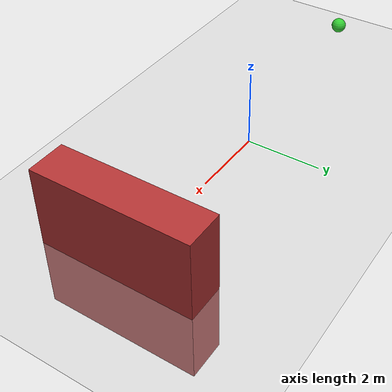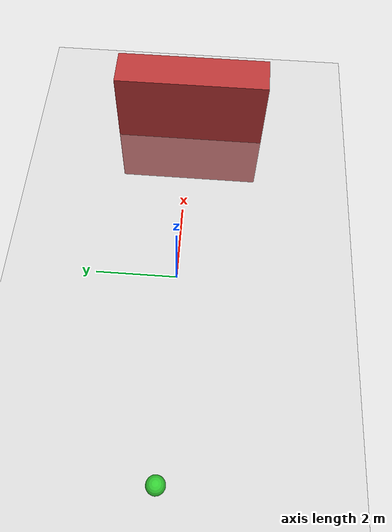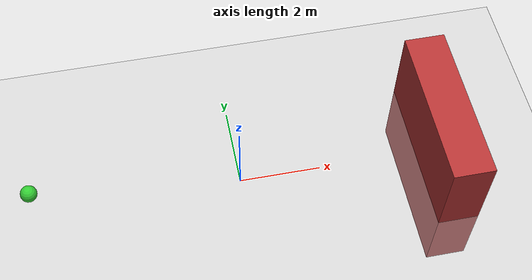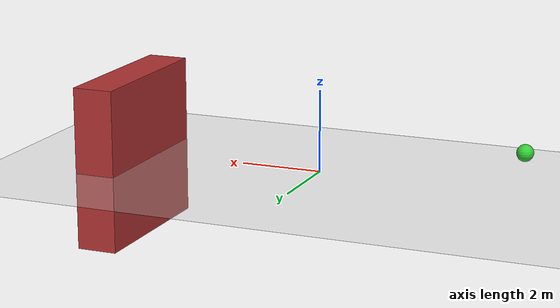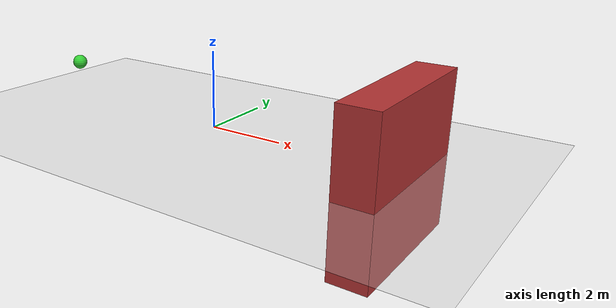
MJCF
<mujoco>
  <option gravity="0 0 -9.81" />
  <worldbody>
    <body name="object_2" pos="5 0 0">
      <geom type="box" size="0.5 2 2" rgba="0.7 0.2 0.2 1" friction="0.8 0.8 0.8" />
    </body>
    <body name="object_3" pos="0 0 -0.1">
      <geom type="plane" size="30 30 0.1" rgba="0.8 0.8 0.8 1" friction="1 1 1" />
    </body>
    <body name="object_1" pos="-5 0 1">
      <geom type="sphere" size="0.2" density="1" rgba="0.2 0.8 0.2 1" />
      <joint name="object_1_joint" type="free" />
    </body>
  </worldbody>
</mujoco>
